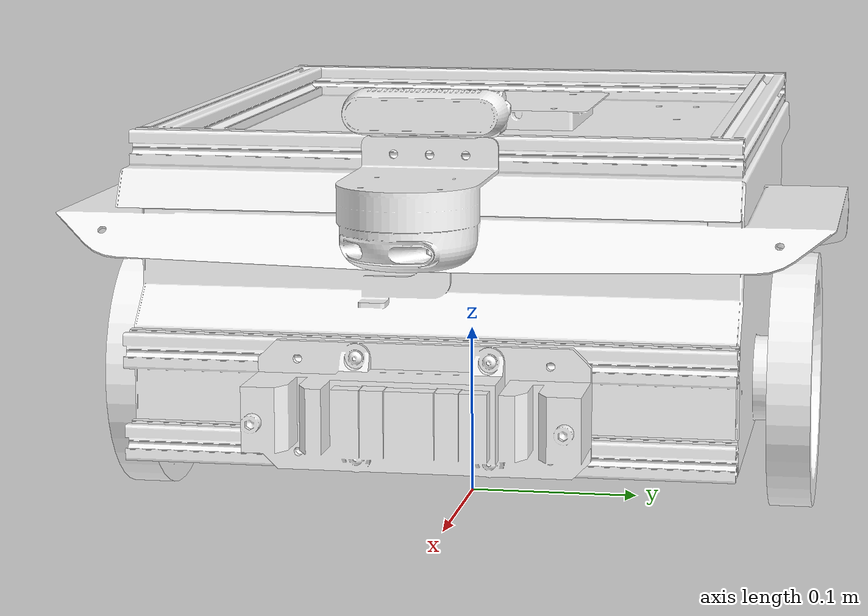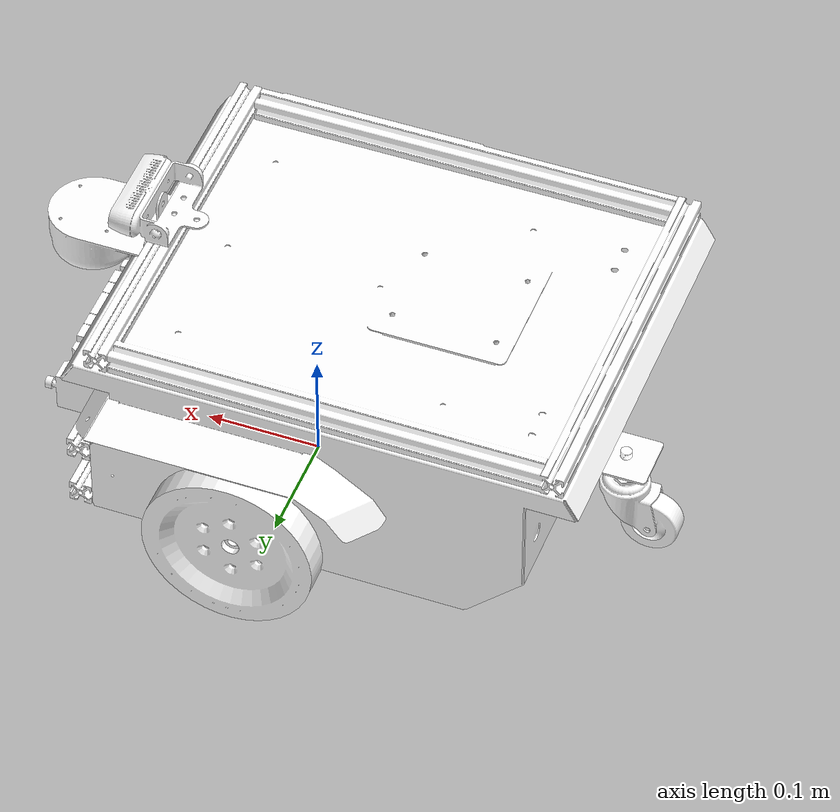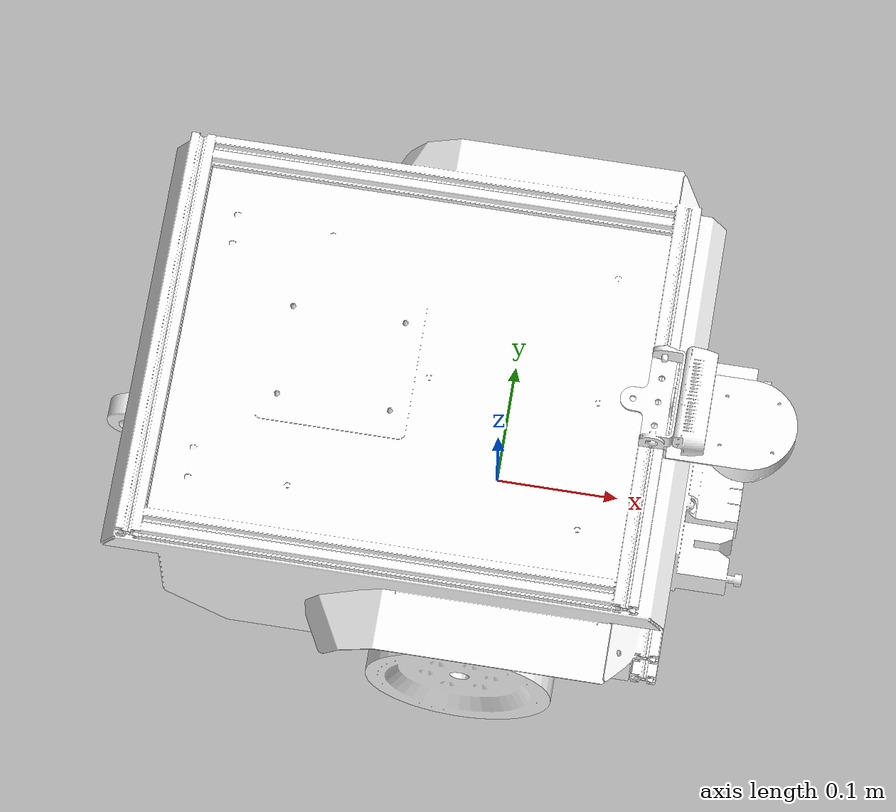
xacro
<?xml version="1.0"?>
<robot xmlns:xacro="http://www.ros.org/wiki/xacro" name="eduro" >

  <link  name="base_footprint">
  </link>
  <link
    name="base_Link">
    <inertial>
      <origin
        xyz="0 0 0"
        rpy="0 0 0" />
      <mass
        value="13.072723" />
      <inertia
        ixx="0.18142415"
        ixy="-0.0002844"
        ixz="-0.00557763"
        iyy="0.20788446"
        iyz="-4.221E-05"
        izz="0.29582098" />
    </inertial>
    <visual>
      <origin
        xyz="0 0 0"
        rpy="0 0 0" />
      <geometry>
        <mesh
          filename="package://eduro_description/meshes/base_Link.STL" />
      </geometry>
      <material
        name="">
        <color
          rgba="1 1 1 1" />
      </material>
    </visual>
    <collision>
      <origin
        xyz="0 0 0"
        rpy="0 0 0" />
      <geometry>
        <mesh
          filename="package://eduro_description/meshes/base_Link.STL" />
      </geometry>
    </collision>
  </link>
  <joint
    name="base_joint"
    type="fixed">
    <origin
      xyz="-0.0523963621561536 -1.55230000002776E-05 0.118859223090854"
      rpy="0 0 0" />
    <parent
      link="base_footprint" />
    <child
      link="base_Link" />
    <axis
      xyz="0 0 0" />
  </joint>
  <link
    name="right_wheel_Link">
    <inertial>
      <origin
        xyz="0 0 0"
        rpy="0 0 0" />
      <mass
        value="0.34675" />
      <inertia
        ixx="0.0006489"
        ixy="0"
        ixz="0"
        iyy="0.001271"
        iyz="0"
        izz="0.0006489" />
    </inertial>
    <visual>
      <origin
        xyz="0 0 0"
        rpy="0 0 0" />
      <geometry>
        <mesh
          filename="package://eduro_description/meshes/right_wheel_Link.STL" />
      </geometry>
      <material
        name="">
        <color
          rgba="1 1 1 1" />
      </material>
    </visual>
    <collision>
      <origin
        xyz="0 0 0"
        rpy="0 0 0" />
      <geometry>
        <mesh
          filename="package://eduro_description/meshes/right_wheel_Link.STL" />
      </geometry>
    </collision>
  </link>
  <joint
    name="right_wheel_joint"
    type="continuous">
    <origin
      xyz="0.0523963621561544 -0.193478459 -0.0438592230908529"
      rpy="0 0 0" />
    <parent
      link="base_Link" />
    <child
      link="right_wheel_Link" />
    <axis
      xyz="0 1 0" />
  </joint>
  <link
    name="left_wheel_Link">
    <inertial>
      <origin
        xyz="0 0 0"
        rpy="0 0 0" />
      <mass
        value="0.34675" />
      <inertia
        ixx="0.0006489"
        ixy="0"
        ixz="0"
        iyy="0.001271"
        iyz="0"
        izz="0.0006489" />
    </inertial>
    <visual>
      <origin
        xyz="0 0 0"
        rpy="0 0 0" />
      <geometry>
        <mesh
          filename="package://eduro_description/meshes/left_wheel_Link.STL" />
      </geometry>
      <material
        name="">
        <color
          rgba="1 1 1 1" />
      </material>
    </visual>
    <collision>
      <origin
        xyz="0 0 0"
        rpy="0 0 0" />
      <geometry>
        <mesh
          filename="package://eduro_description/meshes/left_wheel_Link.STL" />
      </geometry>
    </collision>
  </link>
  <joint
    name="left_wheel_joint"
    type="continuous">
    <origin
      xyz="0.052396362156153 0.193509505 -0.0438592230908542"
      rpy="0 0 0" />
    <parent
      link="base_Link" />
    <child
      link="left_wheel_Link" />
    <axis
      xyz="0 1 0" />
  </joint>
  <link
    name="caster_wheel_Link1">
    <inertial>
      <origin
        xyz="0 0 0"
        rpy="0 0 0" />
      <mass
        value="0.15875" />
      <inertia
        ixx="4.83E-05"
        ixy="0"
        ixz="0"
        iyy="5.217E-05"
        iyz="0"
        izz="4.294E-05" />
    </inertial>
    <visual>
      <origin
        xyz="0 0 0"
        rpy="0 0 0" />
      <geometry>
        <mesh
          filename="package://eduro_description/meshes/caster_wheel_Link1.STL" />
      </geometry>
      <material
        name="">
        <color
          rgba="1 1 1 1" />
      </material>
    </visual>
    <collision>
      <origin
        xyz="0 0 0"
        rpy="0 0 0" />
      <geometry>
        <mesh
          filename="package://eduro_description/meshes/caster_wheel_Link1.STL" />
      </geometry>
    </collision>
  </link>
  <joint
    name="caster_wheel_joint1"
    type="fixed">
    <origin
      xyz="-0.22523 1.5165E-05 -0.059419"
      rpy="0 0 0" />
    <parent
      link="base_Link" />
    <child
      link="caster_wheel_Link1" />
    <axis
      xyz="0 0 1" />
  </joint>
  <link
    name="caster_wheel_Link2">
    <inertial>
      <origin
        xyz="0 0 0"
        rpy="0 0 0" />
      <mass
        value="0.036792" />
      <inertia
        ixx="7.4436E-06"
        ixy="0"
        ixz="0"
        iyy="1.2795E-05"
        iyz="0"
        izz="7.4436E-06" />
    </inertial>
    <visual>
      <origin
        xyz="0 0 0"
        rpy="0 0 0" />
      <geometry>
        <mesh
          filename="package://eduro_description/meshes/caster_wheel_Link2.STL" />
      </geometry>
      <material
        name="">
        <color
          rgba="1 1 1 1" />
      </material>
    </visual>
    <collision>
      <origin
        xyz="0 0 0"
        rpy="0 0 0" />
      <geometry>
        <mesh
          filename="package://eduro_description/meshes/caster_wheel_Link2.STL" />
      </geometry>
    </collision>
  </link>
  <joint
    name="caster_wheel_joint2"
    type="fixed">
    <origin
      xyz="-0.021379 0 -0.03444"
      rpy="0 0 0" />
    <parent
      link="caster_wheel_Link1" />
    <child
      link="caster_wheel_Link2" />
    <axis
      xyz="0 1 0" />
  </joint>
  <link
    name="camera_link">
    <inertial>
      <origin
        xyz="-0.033493 -0.0175 -0.0052282"
        rpy="0 0 0" />
      <mass
        value="0.076213" />
      <inertia
        ixx="5.7704E-05"
        ixy="6.8829E-20"
        ixz="-3.391E-07"
        iyy="7.4478E-06"
        iyz="1.0525E-19"
        izz="5.985E-05" />
    </inertial>
    <visual>
      <origin
        xyz="0 0 0"
        rpy="0 0 0" />
      <geometry>
        <mesh
          filename="package://eduro_description/meshes/camera_Link.STL" />
      </geometry>
      <material
        name="">
        <color
          rgba="1 1 1 1" />
      </material>
    </visual>
    <collision>
      <origin
        xyz="0 0 0"
        rpy="0 0 0" />
      <geometry>
        <mesh
          filename="package://eduro_description/meshes/camera_Link.STL" />
      </geometry>
    </collision>
  </link>
  <joint
    name="camera_joint"
    type="fixed">
    <origin
      xyz="0.215033973175765 0.0175155229999973 0.126428387824757"
      rpy="0 0 0" />
    <parent
      link="base_Link" />
    <child
      link="camera_link" />
    <axis
      xyz="0 0 0" />
  </joint>
  <link
    name="Lidar_Link">
    <inertial>
      <origin
        xyz="-0.013504 -0.00050756 -0.0062451"
        rpy="0 0 0" />
      <mass
        value="0.23332" />
      <inertia
        ixx="9.9832E-05"
        ixy="-1.4969E-06"
        ixz="1.2739E-05"
        iyy="0.00016209"
        iyz="-8.0854E-08"
        izz="0.00024687" />
    </inertial>
    <visual>
      <origin
        xyz="0 0 0"
        rpy="0 0 0" />
      <geometry>
        <mesh
          filename="package://eduro_description/meshes/Lidar_Link.STL" />
      </geometry>
      <material
        name="">
        <color
          rgba="1 1 1 1" />
      </material>
    </visual>
    <collision>
      <origin
        xyz="0 0 0"
        rpy="0 0 0" />
      <geometry>
        <mesh
          filename="package://eduro_description/meshes/Lidar_Link.STL" />
      </geometry>
    </collision>
  </link>
  <joint
    name="Lidar_joint"
    type="fixed">
    <origin
      xyz="0.251325565829353 1.55230000012813E-05 0.0927115732359418"
      rpy="0 0 0" />
    <parent
      link="base_Link" />
    <child
      link="Lidar_Link" />
    <axis
      xyz="0 0 0" />
  </joint>
  <link
    name="robopads_Link">
    <inertial>
      <origin
        xyz="-0.028726 -1.7647E-16 2.2898E-16"
        rpy="0 0 0" />
      <mass
        value="0.48218" />
      <inertia
        ixx="0.00141423"
        ixy="0"
        ixz="0"
        iyy="0.00020317"
        iyz="0"
        izz="0.00140436" />
    </inertial>
    <visual>
      <origin
        xyz="0 0 0"
        rpy="0 0 0" />
      <geometry>
        <mesh
          filename="package://eduro_description/meshes/robopads_Link.STL" />
      </geometry>
      <material
        name="">
        <color
          rgba="1 1 1 1" />
      </material>
    </visual>
    <collision>
      <origin
        xyz="0 0 0"
        rpy="0 0 0" />
      <geometry>
        <mesh
          filename="package://eduro_description/meshes/robopads_Link.STL" />
      </geometry>
    </collision>
  </link>
  <joint
    name="robopads_joint"
    type="fixed">
    <origin
      xyz="0.253396362156155 1.55230000039606E-05 -0.0348592230908565"
      rpy="0 0 0" />
    <parent
      link="base_Link" />
    <child
      link="robopads_Link" />
    <axis
      xyz="0 0 0" />
  </joint>

  <xacro:macro name="wheel_parameters" params="reference">
    <gazebo reference="${reference}">
      <material>Gazebo/Black</material>
      <mu1 value="1"/>
      <mu2 value="1"/>
      <fdir1 value="1 1 0"/>
      <kp value="10000000.0" />
      <kd value="1.0" />
    </gazebo>
  </xacro:macro>

   <xacro:wheel_parameters reference="right_wheel_Link">
   </xacro:wheel_parameters>

   <xacro:wheel_parameters reference="left_wheel_Link">
   </xacro:wheel_parameters>

   <xacro:wheel_parameters reference="caster_wheel_Link2">
   </xacro:wheel_parameters>

  <transmission name="tran1">
    <type>transmission_interface/SimpleTransmission</type>
    <joint name="right_wheel_joint">
      <hardwareInterface>hardware_interface/VelocityJointInterface</hardwareInterface>
    </joint>
    <actuator name="motor1">
      <hardwareInterface>hardware_interface/VelocityJointInterface</hardwareInterface>
      <mechanicalReduction>1</mechanicalReduction>
    </actuator>
  </transmission>

  <transmission name="tran2">
    <type>transmission_interface/SimpleTransmission</type>
    <joint name="left_wheel_joint">
      <hardwareInterface>hardware_interface/VelocityJointInterface</hardwareInterface>
    </joint>
    <actuator name="motor2">
      <hardwareInterface>hardware_interface/VelocityJointInterface</hardwareInterface>
      <mechanicalReduction>1</mechanicalReduction>
    </actuator>
  </transmission>

  <gazebo>
    <plugin name='simple_controller' filename='libgazebo_ros_planar_move.so'>
      <commandTopic>/eduro/diff_controller/cmd_vel</commandTopic>
      <odometryTopic>/eduro/diff_controller/odom</odometryTopic>
      <odometryFrame>odom</odometryFrame>
      <odometryRate>20.0</odometryRate>
      <robotBaseFrame>base_footprint</robotBaseFrame>
    </plugin>
  </gazebo>

  <gazebo reference="Lidar_Link">
      <sensor type="ray" name="lidar_sensor">
        <pose>0 0 0.05 0 0 3.14</pose>
        <visualize>false</visualize>
        <update_rate>10</update_rate>
        <ray>
          <scan>
            <horizontal>
              <samples>720</samples>
              <resolution>1</resolution>
              <min_angle>-1.41372</min_angle>
              <max_angle>1.41372</max_angle>
            </horizontal>
          </scan>
          <range>
            <min>0.15</min>
            <max>8.0</max>
            <resolution>0.01</resolution>
          </range>
          <noise>
            <type>gaussian</type>
            <mean>0.0</mean>
            <stddev>0.01</stddev>
          </noise>
        </ray>
        <plugin name="gazebo_ros_head_hokuyo_controller" filename="libgazebo_ros_laser.so">
          <topicName>/scan</topicName>
          <frameName>scan</frameName>
        </plugin>
      </sensor>
  </gazebo>

  <gazebo>
    <plugin name="fake_gps" filename="libgazebo_ros_p3d.so">
      <frameName>world</frameName>
      <bodyName>base_footprint</bodyName>
      <topicName>ground_truth</topicName>
      <updateRate>30</updateRate>
      <gaussianNoise>0.0</gaussianNoise>
      <xyzOffset>0.0 0.00 0.0</xyzOffset>
      <rpyOffset>0.0 0.0 0.0</rpyOffset>
    </plugin>
  </gazebo>

  <gazebo reference="camera_link">
    <sensor type="camera" name="realsense_cam">
      <always_on>true</always_on>
      <visualize>0</visualize>
      <camera>
          <horizontal_fov>1.211258</horizontal_fov>
          <image>
              <width>640</width>
              <height>480</height>
              <format>R8G8B8</format>
          </image>
          <clip>
              <near>0.03</near>
              <far>100</far>
          </clip>
      </camera>
      <plugin name="camera_controller" filename="libgazebo_ros_camera.so">
        <alwaysOn>true</alwaysOn>
        <updateRate>30.0</updateRate>
        <cameraName>camera</cameraName>
        <frameName>camera_color_optical_frame</frameName>
        <imageTopicName>color/image_raw</imageTopicName>
        <cameraInfoTopicName>color/camera_info</cameraInfoTopicName>
        <hackBaseline>0.07</hackBaseline>
        <distortionK1>0.0</distortionK1>
        <distortionK2>0.0</distortionK2>
        <distortionK3>0.0</distortionK3>
        <distortionT1>0.0</distortionT1>
        <distortionT2>0.0</distortionT2>
      </plugin>
    </sensor>
  </gazebo>

  <gazebo>
    <plugin name="fake_gps" filename="libgazebo_ros_p3d.so">
      <frameName>world</frameName>
      <bodyName>base_footprint</bodyName>
      <topicName>ground_truth</topicName>
      <updateRate>100</updateRate>
      <gaussianNoise>0.0</gaussianNoise>
      <xyzOffset>0.0 0.00 0.0</xyzOffset>
      <rpyOffset>0.0 0.0 0.0</rpyOffset>
    </plugin>
  </gazebo>

</robot>
